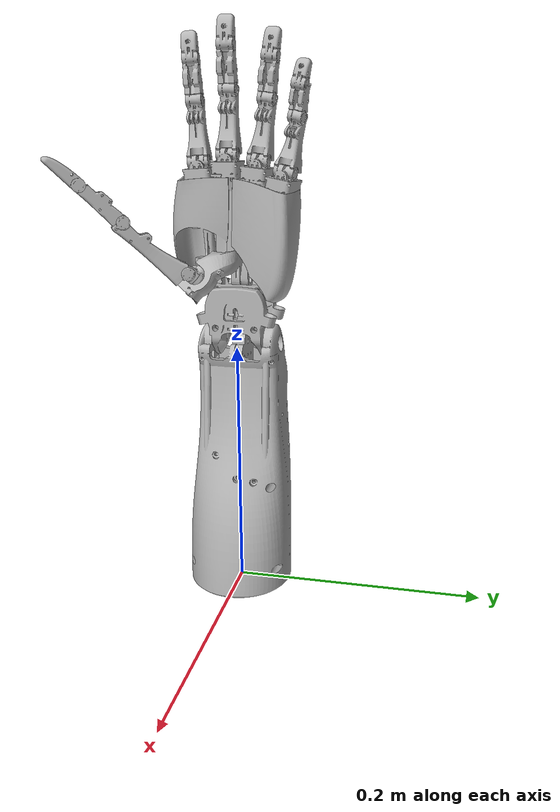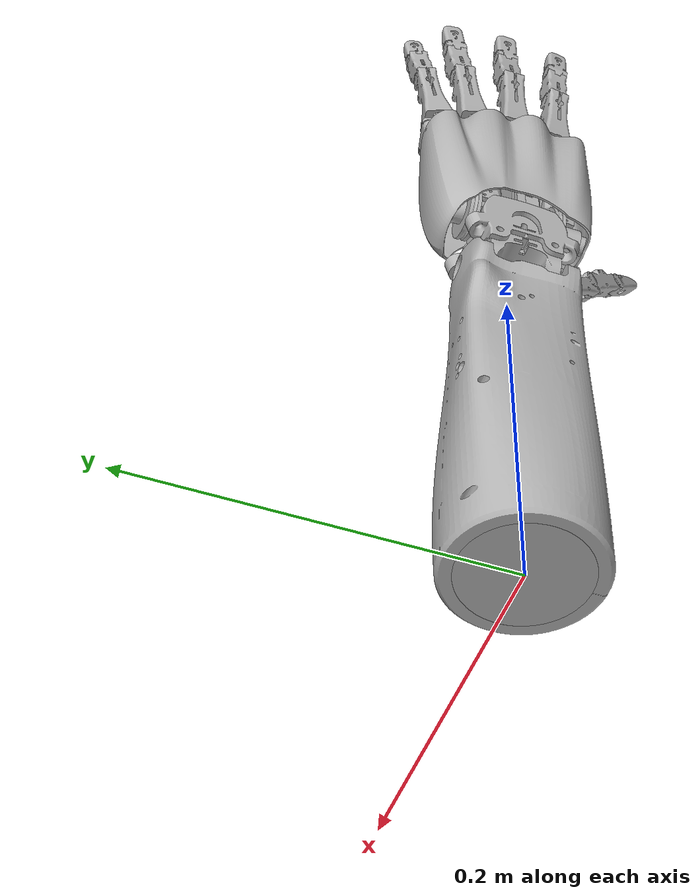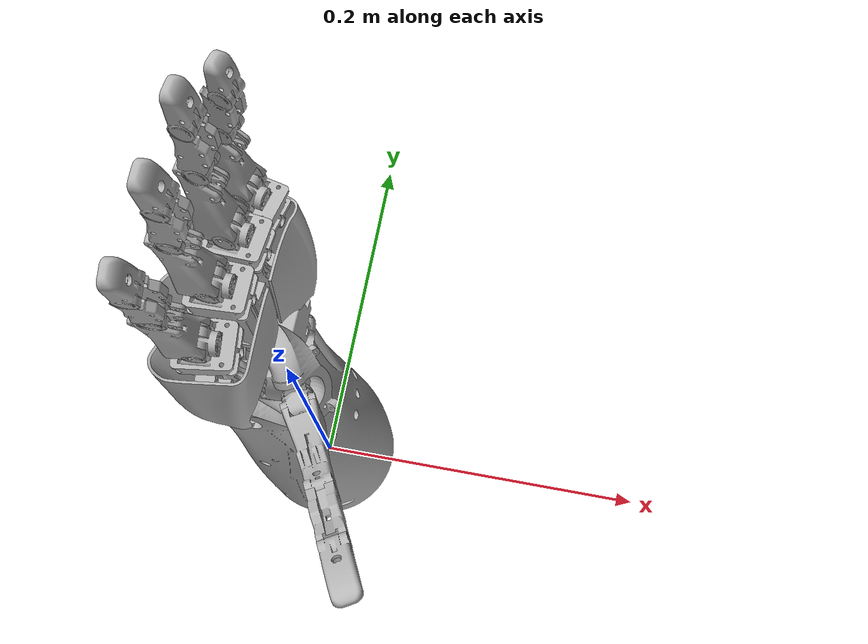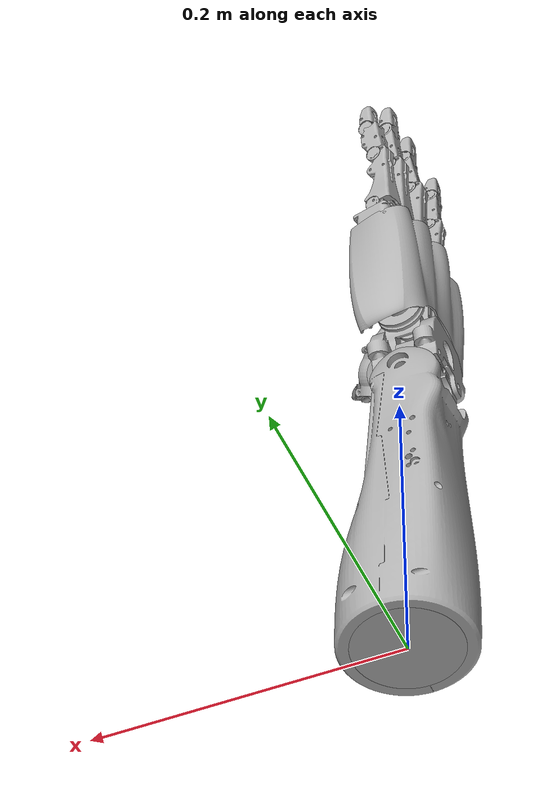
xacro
<?xml version="1.0" ?>
<robot name="dexhand-left" xmlns:xacro="http://www.ros.org/wiki/xacro">

<xacro:include filename="$(find dexhand_description)/urdf/materials.xacro" />
<xacro:include filename="$(find dexhand_description)/urdf/dexhand-left.trans" />
<xacro:include filename="$(find dexhand_description)/urdf/dexhand-left.gazebo" />
<link name="base_link">
  <inertial>
    <origin xyz="-5.952490372344805e-18 -5.952490372344805e-18 0.00625299730853927" rpy="0 0 0"/>
    <mass value="0.3748186138447861"/>
    <inertia ixx="0.000121" iyy="0.000121" izz="0.000233" ixy="0.0" iyz="-0.0" ixz="-0.0"/>
  </inertial>
  <visual>
    <origin xyz="0 0 0" rpy="0 0 0"/>
    <geometry>
      <mesh filename="package://dexhand_description/meshes/left/base_link.stl" scale="0.001 0.001 0.001"/>
    </geometry>
    <material name="silver"/>
  </visual>
  <collision>
    <origin xyz="0 0 0" rpy="0 0 0"/>
    <geometry>
      <mesh filename="package://dexhand_description/meshes/left/base_link.stl" scale="0.001 0.001 0.001"/>
    </geometry>
  </collision>
</link>

<link name="forearm_left_1">
  <inertial>
    <origin xyz="-0.004563551740542068 0.0024890031613358375 0.09119373569002041" rpy="0 0 0"/>
    <mass value="2.2753129035055744"/>
    <inertia ixx="0.009336" iyy="0.00912" izz="0.00247" ixy="3.2e-05" iyz="-4e-06" ixz="0.000837"/>
  </inertial>
  <visual>
    <origin xyz="-0.0 -0.0 -0.0" rpy="0 0 0"/>
    <geometry>
      <mesh filename="package://dexhand_description/meshes/left/forearm_left_1.stl" scale="0.001 0.001 0.001"/>
    </geometry>
    <material name="silver"/>
  </visual>
  <collision>
    <origin xyz="-0.0 -0.0 -0.0" rpy="0 0 0"/>
    <geometry>
      <mesh filename="package://dexhand_description/meshes/left/forearm_left_1.stl" scale="0.001 0.001 0.001"/>
    </geometry>
  </collision>
</link>

<link name="wrist_lower_1">
  <inertial>
    <origin xyz="-3.068376379026551e-05 0.02099365535807375 0.021635071099651598" rpy="0 0 0"/>
    <mass value="0.3236409508310491"/>
    <inertia ixx="0.000132" iyy="0.000118" izz="0.000139" ixy="-0.0" iyz="-0.0" ixz="-0.0"/>
  </inertial>
  <visual>
    <origin xyz="0.012 0.0203 -0.203" rpy="0 0 0"/>
    <geometry>
      <mesh filename="package://dexhand_description/meshes/left/wrist_lower_1.stl" scale="0.001 0.001 0.001"/>
    </geometry>
    <material name="silver"/>
  </visual>
  <collision>
    <origin xyz="0.012 0.0203 -0.203" rpy="0 0 0"/>
    <geometry>
      <mesh filename="package://dexhand_description/meshes/left/wrist_lower_1.stl" scale="0.001 0.001 0.001"/>
    </geometry>
  </collision>
</link>

<link name="wrist_upper_1">
  <inertial>
    <origin xyz="0.011943478530919057 1.9763952347645088e-08 0.007146961841600907" rpy="0 0 0"/>
    <mass value="0.12131953205677495"/>
    <inertia ixx="3.3e-05" iyy="2.2e-05" izz="2.6e-05" ixy="0.0" iyz="-0.0" ixz="-0.0"/>
  </inertial>
  <visual>
    <origin xyz="0.02388 -0.0007 -0.232" rpy="0 0 0"/>
    <geometry>
      <mesh filename="package://dexhand_description/meshes/left/wrist_upper_1.stl" scale="0.001 0.001 0.001"/>
    </geometry>
    <material name="silver"/>
  </visual>
  <collision>
    <origin xyz="0.02388 -0.0007 -0.232" rpy="0 0 0"/>
    <geometry>
      <mesh filename="package://dexhand_description/meshes/left/wrist_upper_1.stl" scale="0.001 0.001 0.001"/>
    </geometry>
  </collision>
</link>

<link name="index_bulk_left_1">
  <inertial>
    <origin xyz="0.0019538273380790318 -0.005732494629266137 0.04310724149718498" rpy="0 0 0"/>
    <mass value="0.10571523671577603"/>
    <inertia ixx="0.000112" iyy="0.000114" izz="8e-06" ixy="0.0" iyz="6e-06" ixz="-7e-06"/>
  </inertial>
  <visual>
    <origin xyz="0.01188 0.0203 -0.255266" rpy="0 0 0"/>
    <geometry>
      <mesh filename="package://dexhand_description/meshes/left/index_bulk_left_1.stl" scale="0.001 0.001 0.001"/>
    </geometry>
    <material name="silver"/>
  </visual>
  <collision>
    <origin xyz="0.01188 0.0203 -0.255266" rpy="0 0 0"/>
    <geometry>
      <mesh filename="package://dexhand_description/meshes/left/index_bulk_left_1.stl" scale="0.001 0.001 0.001"/>
    </geometry>
  </collision>
</link>

<link name="middle_bulk_left_1">
  <inertial>
    <origin xyz="0.010646693885552101 0.015813587520650638 0.0306892321585171" rpy="0 0 0"/>
    <mass value="0.23199619688762876"/>
    <inertia ixx="0.000258" iyy="0.000268" izz="7.1e-05" ixy="1.4e-05" iyz="-4.2e-05" ixz="4e-05"/>
  </inertial>
  <visual>
    <origin xyz="0.011884 0.0263 -0.254814" rpy="0 0 0"/>
    <geometry>
      <mesh filename="package://dexhand_description/meshes/left/middle_bulk_left_1.stl" scale="0.001 0.001 0.001"/>
    </geometry>
    <material name="silver"/>
  </visual>
  <collision>
    <origin xyz="0.011884 0.0263 -0.254814" rpy="0 0 0"/>
    <geometry>
      <mesh filename="package://dexhand_description/meshes/left/middle_bulk_left_1.stl" scale="0.001 0.001 0.001"/>
    </geometry>
  </collision>
</link>

<link name="ring_bulk_left_1">
  <inertial>
    <origin xyz="0.003391564401113451 0.010251244048412596 0.05277766582318083" rpy="0 0 0"/>
    <mass value="0.09588693536899053"/>
    <inertia ixx="7.4e-05" iyy="7.4e-05" izz="7e-06" ixy="-1e-06" iyz="-8e-06" ixz="-7e-06"/>
  </inertial>
  <visual>
    <origin xyz="0.011884 -0.0027 -0.254814" rpy="0 0 0"/>
    <geometry>
      <mesh filename="package://dexhand_description/meshes/left/ring_bulk_left_1.stl" scale="0.001 0.001 0.001"/>
    </geometry>
    <material name="silver"/>
  </visual>
  <collision>
    <origin xyz="0.011884 -0.0027 -0.254814" rpy="0 0 0"/>
    <geometry>
      <mesh filename="package://dexhand_description/meshes/left/ring_bulk_left_1.stl" scale="0.001 0.001 0.001"/>
    </geometry>
  </collision>
</link>

<link name="pinky_bulk_left_1">
  <inertial>
    <origin xyz="0.0027268942355102316 0.022196506510013668 0.03641042544359541" rpy="0 0 0"/>
    <mass value="0.11417783762661171"/>
    <inertia ixx="0.000111" iyy="0.000112" izz="1e-05" ixy="-1e-06" iyz="-1.3e-05" ixz="-1e-05"/>
  </inertial>
  <visual>
    <origin xyz="0.011884 -0.009438 -0.254814" rpy="0 0 0"/>
    <geometry>
      <mesh filename="package://dexhand_description/meshes/left/pinky_bulk_left_1.stl" scale="0.001 0.001 0.001"/>
    </geometry>
    <material name="silver"/>
  </visual>
  <collision>
    <origin xyz="0.011884 -0.009438 -0.254814" rpy="0 0 0"/>
    <geometry>
      <mesh filename="package://dexhand_description/meshes/left/pinky_bulk_left_1.stl" scale="0.001 0.001 0.001"/>
    </geometry>
  </collision>
</link>

<link name="thumb_cmc_b_1">
  <inertial>
    <origin xyz="0.0033566021448640723 -0.005808181561736979 -0.00814169684457966" rpy="0 0 0"/>
    <mass value="0.008494087027059793"/>
    <inertia ixx="0.0" iyy="0.0" izz="0.0" ixy="0.0" iyz="-0.0" ixz="0.0"/>
  </inertial>
  <visual>
    <origin xyz="-0.016164 0.020749 -0.265286" rpy="0 0 0"/>
    <geometry>
      <mesh filename="package://dexhand_description/meshes/left/thumb_cmc_b_1.stl" scale="0.001 0.001 0.001"/>
    </geometry>
    <material name="silver"/>
  </visual>
  <collision>
    <origin xyz="-0.016164 0.020749 -0.265286" rpy="0 0 0"/>
    <geometry>
      <mesh filename="package://dexhand_description/meshes/left/thumb_cmc_b_1.stl" scale="0.001 0.001 0.001"/>
    </geometry>
  </collision>
</link>

<link name="thumb_cmc_a_1">
  <inertial>
    <origin xyz="0.0029040235619812588 -0.0050790789776411285 0.005851148405590978" rpy="0 0 0"/>
    <mass value="0.015039242610946097"/>
    <inertia ixx="0.0" iyy="0.0" izz="0.0" ixy="-0.0" iyz="0.0" ixz="-0.0"/>
  </inertial>
  <visual>
    <origin xyz="-0.018999 0.025645 -0.256093" rpy="0 0 0"/>
    <geometry>
      <mesh filename="package://dexhand_description/meshes/left/thumb_cmc_a_1.stl" scale="0.001 0.001 0.001"/>
    </geometry>
    <material name="silver"/>
  </visual>
  <collision>
    <origin xyz="-0.018999 0.025645 -0.256093" rpy="0 0 0"/>
    <geometry>
      <mesh filename="package://dexhand_description/meshes/left/thumb_cmc_a_1.stl" scale="0.001 0.001 0.001"/>
    </geometry>
  </collision>
</link>

<link name="thumb_plp_1">
  <inertial>
    <origin xyz="0.01948596550169868 -0.01752527298585293 0.01661555837483286" rpy="0 0 0"/>
    <mass value="0.06710748615776632"/>
    <inertia ixx="2.1e-05" iyy="1.5e-05" izz="1.3e-05" ixy="5e-06" iyz="9e-06" ixz="-5e-06"/>
  </inertial>
  <visual>
    <origin xyz="-0.015836 0.036432 -0.263854" rpy="0 0 0"/>
    <geometry>
      <mesh filename="package://dexhand_description/meshes/left/thumb_plp_1.stl" scale="0.001 0.001 0.001"/>
    </geometry>
    <material name="silver"/>
  </visual>
  <collision>
    <origin xyz="-0.015836 0.036432 -0.263854" rpy="0 0 0"/>
    <geometry>
      <mesh filename="package://dexhand_description/meshes/left/thumb_plp_1.stl" scale="0.001 0.001 0.001"/>
    </geometry>
  </collision>
</link>

<link name="thumb_mlp_1">
  <inertial>
    <origin xyz="0.012445308919413409 -0.009667817552507701 0.012743810456854687" rpy="0 0 0"/>
    <mass value="0.025187203449803457"/>
    <inertia ixx="2e-06" iyy="2e-06" izz="2e-06" ixy="0.0" iyz="1e-06" ixz="-0.0"/>
  </inertial>
  <visual>
    <origin xyz="-0.040303 0.074568 -0.303457" rpy="0 0 0"/>
    <geometry>
      <mesh filename="package://dexhand_description/meshes/left/thumb_mlp_1.stl" scale="0.001 0.001 0.001"/>
    </geometry>
    <material name="silver"/>
  </visual>
  <collision>
    <origin xyz="-0.040303 0.074568 -0.303457" rpy="0 0 0"/>
    <geometry>
      <mesh filename="package://dexhand_description/meshes/left/thumb_mlp_1.stl" scale="0.001 0.001 0.001"/>
    </geometry>
  </collision>
</link>

<link name="thumb_tip_1">
  <inertial>
    <origin xyz="0.009236914086245843 -0.004264435853806994 0.007473891309465075" rpy="0 0 0"/>
    <mass value="0.02316990761545859"/>
    <inertia ixx="2e-06" iyy="1e-06" izz="2e-06" ixy="0.0" iyz="1e-06" ixz="-0.0"/>
  </inertial>
  <visual>
    <origin xyz="-0.054935 0.100147 -0.330506" rpy="0 0 0"/>
    <geometry>
      <mesh filename="package://dexhand_description/meshes/left/thumb_tip_1.stl" scale="0.001 0.001 0.001"/>
    </geometry>
    <material name="silver"/>
  </visual>
  <collision>
    <origin xyz="-0.054935 0.100147 -0.330506" rpy="0 0 0"/>
    <geometry>
      <mesh filename="package://dexhand_description/meshes/left/thumb_tip_1.stl" scale="0.001 0.001 0.001"/>
    </geometry>
  </collision>
</link>

<link name="index_knuckle_1">
  <inertial>
    <origin xyz="0.009885035151940528 0.0007944006102220333 0.0011491980522007617" rpy="0 0 0"/>
    <mass value="0.016772407452453803"/>
    <inertia ixx="1e-06" iyy="1e-06" izz="1e-06" ixy="-0.0" iyz="-0.0" ixz="-0.0"/>
  </inertial>
  <visual>
    <origin xyz="0.018773 0.0304 -0.340105" rpy="0 0 0"/>
    <geometry>
      <mesh filename="package://dexhand_description/meshes/left/index_knuckle_1.stl" scale="0.001 0.001 0.001"/>
    </geometry>
    <material name="silver"/>
  </visual>
  <collision>
    <origin xyz="0.018773 0.0304 -0.340105" rpy="0 0 0"/>
    <geometry>
      <mesh filename="package://dexhand_description/meshes/left/index_knuckle_1.stl" scale="0.001 0.001 0.001"/>
    </geometry>
  </collision>
</link>

<link name="index_plp_1">
  <inertial>
    <origin xyz="-0.006869829077265593 0.006034143678836437 0.022940322959094317" rpy="0 0 0"/>
    <mass value="0.051567105457974535"/>
    <inertia ixx="1.1e-05" iyy="1.1e-05" izz="2e-06" ixy="0.0" iyz="1e-06" ixz="0.0"/>
  </inertial>
  <visual>
    <origin xyz="0.007406 0.037699 -0.343724" rpy="0 0 0"/>
    <geometry>
      <mesh filename="package://dexhand_description/meshes/left/index_plp_1.stl" scale="0.001 0.001 0.001"/>
    </geometry>
    <material name="silver"/>
  </visual>
  <collision>
    <origin xyz="0.007406 0.037699 -0.343724" rpy="0 0 0"/>
    <geometry>
      <mesh filename="package://dexhand_description/meshes/left/index_plp_1.stl" scale="0.001 0.001 0.001"/>
    </geometry>
  </collision>
</link>

<link name="index_mlp_1">
  <inertial>
    <origin xyz="-0.001467879367556808 0.004862194442804731 0.014903889093192402" rpy="0 0 0"/>
    <mass value="0.017288956361389173"/>
    <inertia ixx="1e-06" iyy="1e-06" izz="0.0" ixy="0.0" iyz="0.0" ixz="-0.0"/>
  </inertial>
  <visual>
    <origin xyz="0.012096 0.038956 -0.388698" rpy="0 0 0"/>
    <geometry>
      <mesh filename="package://dexhand_description/meshes/left/index_mlp_1.stl" scale="0.001 0.001 0.001"/>
    </geometry>
    <material name="silver"/>
  </visual>
  <collision>
    <origin xyz="0.012096 0.038956 -0.388698" rpy="0 0 0"/>
    <geometry>
      <mesh filename="package://dexhand_description/meshes/left/index_mlp_1.stl" scale="0.001 0.001 0.001"/>
    </geometry>
  </collision>
</link>

<link name="index_tip_1">
  <inertial>
    <origin xyz="-0.0008648257503324729 0.005386014681896124 0.006769428244987441" rpy="0 0 0"/>
    <mass value="0.0160783570939756"/>
    <inertia ixx="1e-06" iyy="1e-06" izz="0.0" ixy="0.0" iyz="0.0" ixz="0.0"/>
  </inertial>
  <visual>
    <origin xyz="0.013464 0.041175 -0.418585" rpy="0 0 0"/>
    <geometry>
      <mesh filename="package://dexhand_description/meshes/left/index_tip_1.stl" scale="0.001 0.001 0.001"/>
    </geometry>
    <material name="silver"/>
  </visual>
  <collision>
    <origin xyz="0.013464 0.041175 -0.418585" rpy="0 0 0"/>
    <geometry>
      <mesh filename="package://dexhand_description/meshes/left/index_tip_1.stl" scale="0.001 0.001 0.001"/>
    </geometry>
  </collision>
</link>

<link name="middle_knuckle_1">
  <inertial>
    <origin xyz="0.009935151755682919 3.0952817304044644e-08 0.0009790823713298757" rpy="0 0 0"/>
    <mass value="0.016772407452453803"/>
    <inertia ixx="1e-06" iyy="1e-06" izz="1e-06" ixy="0.0" iyz="0.0" ixz="-0.0"/>
  </inertial>
  <visual>
    <origin xyz="0.01775 0.0063 -0.345814" rpy="0 0 0"/>
    <geometry>
      <mesh filename="package://dexhand_description/meshes/left/middle_knuckle_1.stl" scale="0.001 0.001 0.001"/>
    </geometry>
    <material name="silver"/>
  </visual>
  <collision>
    <origin xyz="0.01775 0.0063 -0.345814" rpy="0 0 0"/>
    <geometry>
      <mesh filename="package://dexhand_description/meshes/left/middle_knuckle_1.stl" scale="0.001 0.001 0.001"/>
    </geometry>
  </collision>
</link>

<link name="middle_plp_1">
  <inertial>
    <origin xyz="-0.005943828759089027 0.008200109960029896 0.023731700948842305" rpy="0 0 0"/>
    <mass value="0.05600912510930776"/>
    <inertia ixx="1.3e-05" iyy="1.3e-05" izz="2e-06" ixy="0.0" iyz="0.0" ixz="0.0"/>
  </inertial>
  <visual>
    <origin xyz="0.007 0.0143 -0.349814" rpy="0 0 0"/>
    <geometry>
      <mesh filename="package://dexhand_description/meshes/left/middle_plp_1.stl" scale="0.001 0.001 0.001"/>
    </geometry>
    <material name="silver"/>
  </visual>
  <collision>
    <origin xyz="0.007 0.0143 -0.349814" rpy="0 0 0"/>
    <geometry>
      <mesh filename="package://dexhand_description/meshes/left/middle_plp_1.stl" scale="0.001 0.001 0.001"/>
    </geometry>
  </collision>
</link>

<link name="middle_mlp_1">
  <inertial>
    <origin xyz="0.0010389909727252754 0.006301231411874452 0.015255284086023058" rpy="0 0 0"/>
    <mass value="0.019660714741942815"/>
    <inertia ixx="1e-06" iyy="1e-06" izz="1e-06" ixy="0.0" iyz="0.0" ixz="-0.0"/>
  </inertial>
  <visual>
    <origin xyz="0.011 0.0123 -0.397064" rpy="0 0 0"/>
    <geometry>
      <mesh filename="package://dexhand_description/meshes/left/middle_mlp_1.stl" scale="0.001 0.001 0.001"/>
    </geometry>
    <material name="silver"/>
  </visual>
  <collision>
    <origin xyz="0.011 0.0123 -0.397064" rpy="0 0 0"/>
    <geometry>
      <mesh filename="package://dexhand_description/meshes/left/middle_mlp_1.stl" scale="0.001 0.001 0.001"/>
    </geometry>
  </collision>
</link>

<link name="middle_tip_1">
  <inertial>
    <origin xyz="-0.0006360042284026743 0.006200203159855194 0.0068544266380235475" rpy="0 0 0"/>
    <mass value="0.0177222165691614"/>
    <inertia ixx="1e-06" iyy="1e-06" izz="0.0" ixy="0.0" iyz="0.0" ixz="0.0"/>
  </inertial>
  <visual>
    <origin xyz="0.008255 0.012299 -0.428444" rpy="0 0 0"/>
    <geometry>
      <mesh filename="package://dexhand_description/meshes/left/middle_tip_1.stl" scale="0.001 0.001 0.001"/>
    </geometry>
    <material name="silver"/>
  </visual>
  <collision>
    <origin xyz="0.008255 0.012299 -0.428444" rpy="0 0 0"/>
    <geometry>
      <mesh filename="package://dexhand_description/meshes/left/middle_tip_1.stl" scale="0.001 0.001 0.001"/>
    </geometry>
  </collision>
</link>

<link name="ring_knuckle_1">
  <inertial>
    <origin xyz="0.009906806826259634 -0.0007484681725672369 0.0009823275245010032" rpy="0 0 0"/>
    <mass value="0.016772407452453803"/>
    <inertia ixx="1e-06" iyy="1e-06" izz="1e-06" ixy="0.0" iyz="0.0" ixz="-0.0"/>
  </inertial>
  <visual>
    <origin xyz="0.016874 -0.018599 -0.34189" rpy="0 0 0"/>
    <geometry>
      <mesh filename="package://dexhand_description/meshes/left/ring_knuckle_1.stl" scale="0.001 0.001 0.001"/>
    </geometry>
    <material name="silver"/>
  </visual>
  <collision>
    <origin xyz="0.016874 -0.018599 -0.34189" rpy="0 0 0"/>
    <geometry>
      <mesh filename="package://dexhand_description/meshes/left/ring_knuckle_1.stl" scale="0.001 0.001 0.001"/>
    </geometry>
  </collision>
</link>

<link name="ring_plp_1">
  <inertial>
    <origin xyz="-0.004989026515399457 0.01123544382305516 0.021430683844999687" rpy="0 0 0"/>
    <mass value="0.051607390430851795"/>
    <inertia ixx="1.1e-05" iyy="1.1e-05" izz="2e-06" ixy="-0.0" iyz="-1e-06" ixz="-0.0"/>
  </inertial>
  <visual>
    <origin xyz="0.006818 -0.010213 -0.346802" rpy="0 0 0"/>
    <geometry>
      <mesh filename="package://dexhand_description/meshes/left/ring_plp_1.stl" scale="0.001 0.001 0.001"/>
    </geometry>
    <material name="silver"/>
  </visual>
  <collision>
    <origin xyz="0.006818 -0.010213 -0.346802" rpy="0 0 0"/>
    <geometry>
      <mesh filename="package://dexhand_description/meshes/left/ring_plp_1.stl" scale="0.001 0.001 0.001"/>
    </geometry>
  </collision>
</link>

<link name="ring_mlp_1">
  <inertial>
    <origin xyz="0.0003730974075174271 0.007646217177228753 0.013759755789535089" rpy="0 0 0"/>
    <mass value="0.017289443732746056"/>
    <inertia ixx="1e-06" iyy="1e-06" izz="0.0" ixy="-0.0" iyz="-0.0" ixz="-0.0"/>
  </inertial>
  <visual>
    <origin xyz="0.010197 -0.018042 -0.391227" rpy="0 0 0"/>
    <geometry>
      <mesh filename="package://dexhand_description/meshes/left/ring_mlp_1.stl" scale="0.001 0.001 0.001"/>
    </geometry>
    <material name="silver"/>
  </visual>
  <collision>
    <origin xyz="0.010197 -0.018042 -0.391227" rpy="0 0 0"/>
    <geometry>
      <mesh filename="package://dexhand_description/meshes/left/ring_mlp_1.stl" scale="0.001 0.001 0.001"/>
    </geometry>
  </collision>
</link>

<link name="ring_tip_1">
  <inertial>
    <origin xyz="-2.490067914703159e-05 0.006623291592850439 0.005616508181646052" rpy="0 0 0"/>
    <mass value="0.016038982608931798"/>
    <inertia ixx="1e-06" iyy="1e-06" izz="0.0" ixy="-0.0" iyz="-0.0" ixz="0.0"/>
  </inertial>
  <visual>
    <origin xyz="0.009925 -0.021514 -0.421024" rpy="0 0 0"/>
    <geometry>
      <mesh filename="package://dexhand_description/meshes/left/ring_tip_1.stl" scale="0.001 0.001 0.001"/>
    </geometry>
    <material name="silver"/>
  </visual>
  <collision>
    <origin xyz="0.009925 -0.021514 -0.421024" rpy="0 0 0"/>
    <geometry>
      <mesh filename="package://dexhand_description/meshes/left/ring_tip_1.stl" scale="0.001 0.001 0.001"/>
    </geometry>
  </collision>
</link>

<link name="pinky_knuckle_1">
  <inertial>
    <origin xyz="0.009760169679435127 -0.0017668604033237376 0.0011316142274968022" rpy="0 0 0"/>
    <mass value="0.016772407452453803"/>
    <inertia ixx="1e-06" iyy="1e-06" izz="1e-06" ixy="0.0" iyz="0.0" ixz="-0.0"/>
  </inertial>
  <visual>
    <origin xyz="0.016154 -0.040246 -0.333527" rpy="0 0 0"/>
    <geometry>
      <mesh filename="package://dexhand_description/meshes/left/pinky_knuckle_1.stl" scale="0.001 0.001 0.001"/>
    </geometry>
    <material name="silver"/>
  </visual>
  <collision>
    <origin xyz="0.016154 -0.040246 -0.333527" rpy="0 0 0"/>
    <geometry>
      <mesh filename="package://dexhand_description/meshes/left/pinky_knuckle_1.stl" scale="0.001 0.001 0.001"/>
    </geometry>
  </collision>
</link>

<link name="pinky_plp_1">
  <inertial>
    <origin xyz="-0.0038103514955992804 0.012544562388785391 0.018241923905574275" rpy="0 0 0"/>
    <mass value="0.04272741599660885"/>
    <inertia ixx="8e-06" iyy="8e-06" izz="1e-06" ixy="-0.0" iyz="-1e-06" ixz="-0.0"/>
  </inertial>
  <visual>
    <origin xyz="0.007101 -0.031122 -0.339036" rpy="0 0 0"/>
    <geometry>
      <mesh filename="package://dexhand_description/meshes/left/pinky_plp_1.stl" scale="0.001 0.001 0.001"/>
    </geometry>
    <material name="silver"/>
  </visual>
  <collision>
    <origin xyz="0.007101 -0.031122 -0.339036" rpy="0 0 0"/>
    <geometry>
      <mesh filename="package://dexhand_description/meshes/left/pinky_plp_1.stl" scale="0.001 0.001 0.001"/>
    </geometry>
  </collision>
</link>

<link name="pinky_mlp_1">
  <inertial>
    <origin xyz="0.0010486761432179307 0.007531107353638107 0.011942508707843802" rpy="0 0 0"/>
    <mass value="0.012979924052628225"/>
    <inertia ixx="1e-06" iyy="1e-06" izz="0.0" ixy="-0.0" iyz="-0.0" ixz="-0.0"/>
  </inertial>
  <visual>
    <origin xyz="0.009613 -0.041706 -0.378359" rpy="0 0 0"/>
    <geometry>
      <mesh filename="package://dexhand_description/meshes/left/pinky_mlp_1.stl" scale="0.001 0.001 0.001"/>
    </geometry>
    <material name="silver"/>
  </visual>
  <collision>
    <origin xyz="0.009613 -0.041706 -0.378359" rpy="0 0 0"/>
    <geometry>
      <mesh filename="package://dexhand_description/meshes/left/pinky_mlp_1.stl" scale="0.001 0.001 0.001"/>
    </geometry>
  </collision>
</link>

<link name="pinky_tip_1">
  <inertial>
    <origin xyz="0.000569281570460432 0.00614030199171952 0.004252130688615574" rpy="0 0 0"/>
    <mass value="0.012880734939160096"/>
    <inertia ixx="1e-06" iyy="1e-06" izz="0.0" ixy="-0.0" iyz="-0.0" ixz="0.0"/>
  </inertial>
  <visual>
    <origin xyz="0.006067 -0.045102 -0.401216" rpy="0 0 0"/>
    <geometry>
      <mesh filename="package://dexhand_description/meshes/left/pinky_tip_1.stl" scale="0.001 0.001 0.001"/>
    </geometry>
    <material name="silver"/>
  </visual>
  <collision>
    <origin xyz="0.006067 -0.045102 -0.401216" rpy="0 0 0"/>
    <geometry>
      <mesh filename="package://dexhand_description/meshes/left/pinky_tip_1.stl" scale="0.001 0.001 0.001"/>
    </geometry>
  </collision>
</link>

<link name="hand-cover-left_1">
  <inertial>
    <origin xyz="0.000995120561463822 0.040954383334705545 0.03842845525872829" rpy="0 0 0"/>
    <mass value="0.1752046644121149"/>
    <inertia ixx="0.000301" iyy="0.000157" izz="0.000241" ixy="-1.6e-05" iyz="2.5e-05" ixz="1e-06"/>
  </inertial>
  <visual>
    <origin xyz="0.011884 0.0383 -0.254814" rpy="0 0 0"/>
    <geometry>
      <mesh filename="package://dexhand_description/meshes/left/hand-cover-left_1.stl" scale="0.001 0.001 0.001"/>
    </geometry>
    <material name="silver"/>
  </visual>
  <collision>
    <origin xyz="0.011884 0.0383 -0.254814" rpy="0 0 0"/>
    <geometry>
      <mesh filename="package://dexhand_description/meshes/left/hand-cover-left_1.stl" scale="0.001 0.001 0.001"/>
    </geometry>
  </collision>
</link>

<joint name="flange" type="fixed">
  <origin xyz="0.0 0.0 0.0" rpy="0 0 0"/>
  <parent link="base_link"/>
  <child link="forearm_left_1"/>
</joint>

<joint name="wrist_pitch_lower" type="revolute">
  <origin xyz="-0.012 -0.0203 0.203" rpy="0 0 0"/>
  <parent link="forearm_left_1"/>
  <child link="wrist_lower_1"/>
  <axis xyz="-0.0 -1.0 0.0"/>
  <limit upper="0.523599" lower="-0.523599" effort="100" velocity="100"/>
</joint>

<joint name="wrist_yaw" type="revolute">
  <origin xyz="-0.01188 0.021 0.029" rpy="0 0 0"/>
  <parent link="wrist_lower_1"/>
  <child link="wrist_upper_1"/>
  <axis xyz="1.0 -0.0 -0.0"/>
  <limit upper="0.436332" lower="-0.436332" effort="100" velocity="100"/>
</joint>

<joint name="wrist_pitch_upper" type="revolute">
  <origin xyz="0.012 -0.021 0.023266" rpy="0 0 0"/>
  <parent link="wrist_upper_1"/>
  <child link="index_bulk_left_1"/>
  <axis xyz="-0.0 -1.0 -0.0"/>
  <limit upper="0.349066" lower="-0.349066" effort="100" velocity="100"/>
</joint>

<joint name="middle_bulk" type="fixed">
  <origin xyz="-4e-06 -0.006 -0.000452" rpy="0 0 0"/>
  <parent link="index_bulk_left_1"/>
  <child link="middle_bulk_left_1"/>
</joint>

<joint name="ring_bulk" type="fixed">
  <origin xyz="0.0 0.029 0.0" rpy="0 0 0"/>
  <parent link="middle_bulk_left_1"/>
  <child link="ring_bulk_left_1"/>
</joint>

<joint name="pinky_bulk" type="fixed">
  <origin xyz="0.0 0.006738 0.0" rpy="0 0 0"/>
  <parent link="ring_bulk_left_1"/>
  <child link="pinky_bulk_left_1"/>
</joint>

<joint name="thumb_yaw" type="revolute">
  <origin xyz="0.028048 0.005551 0.010472" rpy="0 0 0"/>
  <parent link="middle_bulk_left_1"/>
  <child link="thumb_cmc_b_1"/>
  <axis xyz="-0.353553 0.612372 0.707107"/>
  <limit upper="0.872665" lower="0.0" effort="100" velocity="100"/>
</joint>

<joint name="thumb_roll" type="revolute">
  <origin xyz="0.002835 -0.004896 -0.009193" rpy="0 0 0"/>
  <parent link="thumb_cmc_b_1"/>
  <child link="thumb_cmc_a_1"/>
  <axis xyz="-0.350973 0.613859 -0.707104"/>
  <limit upper="0.349066" lower="0.0" effort="100" velocity="100"/>
</joint>

<joint name="thumb_pitch" type="revolute">
  <origin xyz="-0.003163 -0.010787 0.007761" rpy="0 0 0"/>
  <parent link="thumb_cmc_a_1"/>
  <child link="thumb_plp_1"/>
  <axis xyz="-0.867074 -0.498174 -0.002105"/>
  <limit upper="0.785398" lower="0.0" effort="100" velocity="100"/>
</joint>

<joint name="thumb_knuckle" type="revolute">
  <origin xyz="0.024467 -0.038136 0.039603" rpy="0 0 0"/>
  <parent link="thumb_plp_1"/>
  <child link="thumb_mlp_1"/>
  <axis xyz="-0.867074 -0.498174 -0.002105"/>
  <limit upper="0.785398" lower="0.0" effort="100" velocity="100"/>
</joint>

<joint name="thumb_tip" type="revolute">
  <origin xyz="0.014632 -0.025579 0.027049" rpy="0 0 0"/>
  <parent link="thumb_mlp_1"/>
  <child link="thumb_tip_1"/>
  <axis xyz="-0.867074 -0.498174 -0.002105"/>
  <limit upper="0.785398" lower="0.0" effort="100" velocity="100"/>
</joint>

<joint name="index_yaw" type="revolute">
  <origin xyz="-0.006893 -0.0101 0.084839" rpy="0 0 0"/>
  <parent link="index_bulk_left_1"/>
  <child link="index_knuckle_1"/>
  <axis xyz="0.99606 0.086969 0.017358"/>
  <limit upper="0.349066" lower="-0.349066" effort="100" velocity="100"/>
</joint>

<joint name="index_pitch" type="revolute">
  <origin xyz="0.011367 -0.007299 0.003619" rpy="0 0 0"/>
  <parent link="index_knuckle_1"/>
  <child link="index_plp_1"/>
  <axis xyz="-0.087977 0.993678 0.069746"/>
  <limit upper="0.785398" lower="0.0" effort="100" velocity="100"/>
</joint>

<joint name="index_knuckle" type="revolute">
  <origin xyz="-0.00469 -0.001257 0.044974" rpy="0 0 0"/>
  <parent link="index_plp_1"/>
  <child link="index_mlp_1"/>
  <axis xyz="-0.087977 0.993678 0.069746"/>
  <limit upper="0.785398" lower="0.0" effort="100" velocity="100"/>
</joint>

<joint name="index_tip" type="revolute">
  <origin xyz="-0.001368 -0.002219 0.029887" rpy="0 0 0"/>
  <parent link="index_mlp_1"/>
  <child link="index_tip_1"/>
  <axis xyz="-0.087977 0.993678 0.069746"/>
  <limit upper="0.785398" lower="0.0" effort="100" velocity="100"/>
</joint>

<joint name="middle_yaw" type="revolute">
  <origin xyz="-0.005866 0.02 0.091" rpy="0 0 0"/>
  <parent link="middle_bulk_left_1"/>
  <child link="middle_knuckle_1"/>
  <axis xyz="1.0 0.0 -0.0"/>
  <limit upper="0.349066" lower="-0.349066" effort="100" velocity="100"/>
</joint>

<joint name="middle_pitch" type="revolute">
  <origin xyz="0.01075 -0.008 0.004" rpy="0 0 0"/>
  <parent link="middle_knuckle_1"/>
  <child link="middle_plp_1"/>
  <axis xyz="0.0 1.0 0.0"/>
  <limit upper="0.785398" lower="0.0" effort="100" velocity="100"/>
</joint>

<joint name="middle_knuckle" type="revolute">
  <origin xyz="-0.004 0.002 0.04725" rpy="0 0 0"/>
  <parent link="middle_plp_1"/>
  <child link="middle_mlp_1"/>
  <axis xyz="0.0 1.0 0.0"/>
  <limit upper="0.785398" lower="0.0" effort="100" velocity="100"/>
</joint>

<joint name="middle_tip" type="revolute">
  <origin xyz="0.002745 1e-06 0.03138" rpy="0 0 0"/>
  <parent link="middle_mlp_1"/>
  <child link="middle_tip_1"/>
  <axis xyz="0.0 1.0 0.0"/>
  <limit upper="0.785398" lower="0.0" effort="100" velocity="100"/>
</joint>

<joint name="ring_yaw" type="revolute">
  <origin xyz="-0.00499 0.015899 0.087076" rpy="0 0 0"/>
  <parent link="ring_bulk_left_1"/>
  <child link="ring_knuckle_1"/>
  <axis xyz="0.996234 -0.086694 0.001008"/>
  <limit upper="0.349066" lower="-0.349066" effort="100" velocity="100"/>
</joint>

<joint name="ring_pitch" type="revolute">
  <origin xyz="0.010056 -0.008386 0.004912" rpy="0 0 0"/>
  <parent link="ring_knuckle_1"/>
  <child link="ring_plp_1"/>
  <axis xyz="0.086225 0.989495 -0.116038"/>
  <limit upper="0.785398" lower="0.0" effort="100" velocity="100"/>
</joint>

<joint name="ring_knuckle" type="revolute">
  <origin xyz="-0.003379 0.007829 0.044425" rpy="0 0 0"/>
  <parent link="ring_plp_1"/>
  <child link="ring_mlp_1"/>
  <axis xyz="0.086225 0.989495 -0.116038"/>
  <limit upper="0.785398" lower="0.0" effort="100" velocity="100"/>
</joint>

<joint name="ring_tip" type="revolute">
  <origin xyz="0.000272 0.003472 0.029797" rpy="0 0 0"/>
  <parent link="ring_mlp_1"/>
  <child link="ring_tip_1"/>
  <axis xyz="0.086225 0.989495 -0.116038"/>
  <limit upper="0.785398" lower="0.0" effort="100" velocity="100"/>
</joint>

<joint name="pinky_yaw" type="revolute">
  <origin xyz="-0.00427 0.030808 0.078713" rpy="0 0 0"/>
  <parent link="pinky_bulk_left_1"/>
  <child link="pinky_knuckle_1"/>
  <axis xyz="0.98067 -0.194947 0.016825"/>
  <limit upper="0.349066" lower="-0.349066" effort="100" velocity="100"/>
</joint>

<joint name="pinky_pitch" type="revolute">
  <origin xyz="0.009053 -0.009124 0.005509" rpy="0 0 0"/>
  <parent link="pinky_knuckle_1"/>
  <child link="pinky_plp_1"/>
  <axis xyz="0.194878 0.965338 -0.173624"/>
  <limit upper="0.785398" lower="0.0" effort="100" velocity="100"/>
</joint>

<joint name="pinky_knuckle" type="revolute">
  <origin xyz="-0.002512 0.010584 0.039323" rpy="0 0 0"/>
  <parent link="pinky_plp_1"/>
  <child link="pinky_mlp_1"/>
  <axis xyz="0.194878 0.965338 -0.173624"/>
  <limit upper="0.785398" lower="0.0" effort="100" velocity="100"/>
</joint>

<joint name="pinky_tip" type="revolute">
  <origin xyz="0.003546 0.003396 0.022857" rpy="0 0 0"/>
  <parent link="pinky_mlp_1"/>
  <child link="pinky_tip_1"/>
  <axis xyz="0.194878 0.965338 -0.173624"/>
  <limit upper="0.785398" lower="0.0" effort="100" velocity="100"/>
</joint>

<joint name="hand_cover" type="fixed">
  <origin xyz="0.0 -0.012 0.0" rpy="0 0 0"/>
  <parent link="middle_bulk_left_1"/>
  <child link="hand-cover-left_1"/>
</joint>

</robot>

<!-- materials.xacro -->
<robot name="dexhand-right" xmlns:xacro="http://www.ros.org/wiki/xacro" >

<material name="silver">
  <color rgba="0.700 0.700 0.700 1.000"/>
</material>

</robot>

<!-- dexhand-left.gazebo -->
<robot name="dexhand-left" xmlns:xacro="http://www.ros.org/wiki/xacro" >

<xacro:property name="body_color" value="Gazebo/Silver" />

<gazebo>
  <plugin name="control" filename="libgazebo_ros_control.so"/>
</gazebo>
<gazebo reference="base_link">
  <material>${body_color}</material>
  <mu1>0.2</mu1>
  <mu2>0.2</mu2>
  <selfCollide>true</selfCollide>
  <gravity>true</gravity>
</gazebo>

<gazebo reference="forearm_left_1">
  <material>${body_color}</material>
  <mu1>0.2</mu1>
  <mu2>0.2</mu2>
  <selfCollide>true</selfCollide>
</gazebo>

<gazebo reference="wrist_lower_1">
  <material>${body_color}</material>
  <mu1>0.2</mu1>
  <mu2>0.2</mu2>
  <selfCollide>true</selfCollide>
</gazebo>

<gazebo reference="wrist_upper_1">
  <material>${body_color}</material>
  <mu1>0.2</mu1>
  <mu2>0.2</mu2>
  <selfCollide>true</selfCollide>
</gazebo>

<gazebo reference="index_bulk_left_1">
  <material>${body_color}</material>
  <mu1>0.2</mu1>
  <mu2>0.2</mu2>
  <selfCollide>true</selfCollide>
</gazebo>

<gazebo reference="middle_bulk_left_1">
  <material>${body_color}</material>
  <mu1>0.2</mu1>
  <mu2>0.2</mu2>
  <selfCollide>true</selfCollide>
</gazebo>

<gazebo reference="ring_bulk_left_1">
  <material>${body_color}</material>
  <mu1>0.2</mu1>
  <mu2>0.2</mu2>
  <selfCollide>true</selfCollide>
</gazebo>

<gazebo reference="pinky_bulk_left_1">
  <material>${body_color}</material>
  <mu1>0.2</mu1>
  <mu2>0.2</mu2>
  <selfCollide>true</selfCollide>
</gazebo>

<gazebo reference="thumb_cmc_b_1">
  <material>${body_color}</material>
  <mu1>0.2</mu1>
  <mu2>0.2</mu2>
  <selfCollide>true</selfCollide>
</gazebo>

<gazebo reference="thumb_cmc_a_1">
  <material>${body_color}</material>
  <mu1>0.2</mu1>
  <mu2>0.2</mu2>
  <selfCollide>true</selfCollide>
</gazebo>

<gazebo reference="thumb_plp_1">
  <material>${body_color}</material>
  <mu1>0.2</mu1>
  <mu2>0.2</mu2>
  <selfCollide>true</selfCollide>
</gazebo>

<gazebo reference="thumb_mlp_1">
  <material>${body_color}</material>
  <mu1>0.2</mu1>
  <mu2>0.2</mu2>
  <selfCollide>true</selfCollide>
</gazebo>

<gazebo reference="thumb_tip_1">
  <material>${body_color}</material>
  <mu1>0.2</mu1>
  <mu2>0.2</mu2>
  <selfCollide>true</selfCollide>
</gazebo>

<gazebo reference="index_knuckle_1">
  <material>${body_color}</material>
  <mu1>0.2</mu1>
  <mu2>0.2</mu2>
  <selfCollide>true</selfCollide>
</gazebo>

<gazebo reference="index_plp_1">
  <material>${body_color}</material>
  <mu1>0.2</mu1>
  <mu2>0.2</mu2>
  <selfCollide>true</selfCollide>
</gazebo>

<gazebo reference="index_mlp_1">
  <material>${body_color}</material>
  <mu1>0.2</mu1>
  <mu2>0.2</mu2>
  <selfCollide>true</selfCollide>
</gazebo>

<gazebo reference="index_tip_1">
  <material>${body_color}</material>
  <mu1>0.2</mu1>
  <mu2>0.2</mu2>
  <selfCollide>true</selfCollide>
</gazebo>

<gazebo reference="middle_knuckle_1">
  <material>${body_color}</material>
  <mu1>0.2</mu1>
  <mu2>0.2</mu2>
  <selfCollide>true</selfCollide>
</gazebo>

<gazebo reference="middle_plp_1">
  <material>${body_color}</material>
  <mu1>0.2</mu1>
  <mu2>0.2</mu2>
  <selfCollide>true</selfCollide>
</gazebo>

<gazebo reference="middle_mlp_1">
  <material>${body_color}</material>
  <mu1>0.2</mu1>
  <mu2>0.2</mu2>
  <selfCollide>true</selfCollide>
</gazebo>

<gazebo reference="middle_tip_1">
  <material>${body_color}</material>
  <mu1>0.2</mu1>
  <mu2>0.2</mu2>
  <selfCollide>true</selfCollide>
</gazebo>

<gazebo reference="ring_knuckle_1">
  <material>${body_color}</material>
  <mu1>0.2</mu1>
  <mu2>0.2</mu2>
  <selfCollide>true</selfCollide>
</gazebo>

<gazebo reference="ring_plp_1">
  <material>${body_color}</material>
  <mu1>0.2</mu1>
  <mu2>0.2</mu2>
  <selfCollide>true</selfCollide>
</gazebo>

<gazebo reference="ring_mlp_1">
  <material>${body_color}</material>
  <mu1>0.2</mu1>
  <mu2>0.2</mu2>
  <selfCollide>true</selfCollide>
</gazebo>

<gazebo reference="ring_tip_1">
  <material>${body_color}</material>
  <mu1>0.2</mu1>
  <mu2>0.2</mu2>
  <selfCollide>true</selfCollide>
</gazebo>

<gazebo reference="pinky_knuckle_1">
  <material>${body_color}</material>
  <mu1>0.2</mu1>
  <mu2>0.2</mu2>
  <selfCollide>true</selfCollide>
</gazebo>

<gazebo reference="pinky_plp_1">
  <material>${body_color}</material>
  <mu1>0.2</mu1>
  <mu2>0.2</mu2>
  <selfCollide>true</selfCollide>
</gazebo>

<gazebo reference="pinky_mlp_1">
  <material>${body_color}</material>
  <mu1>0.2</mu1>
  <mu2>0.2</mu2>
  <selfCollide>true</selfCollide>
</gazebo>

<gazebo reference="pinky_tip_1">
  <material>${body_color}</material>
  <mu1>0.2</mu1>
  <mu2>0.2</mu2>
  <selfCollide>true</selfCollide>
</gazebo>

<gazebo reference="hand-cover-left_1">
  <material>${body_color}</material>
  <mu1>0.2</mu1>
  <mu2>0.2</mu2>
  <selfCollide>true</selfCollide>
</gazebo>

</robot>
